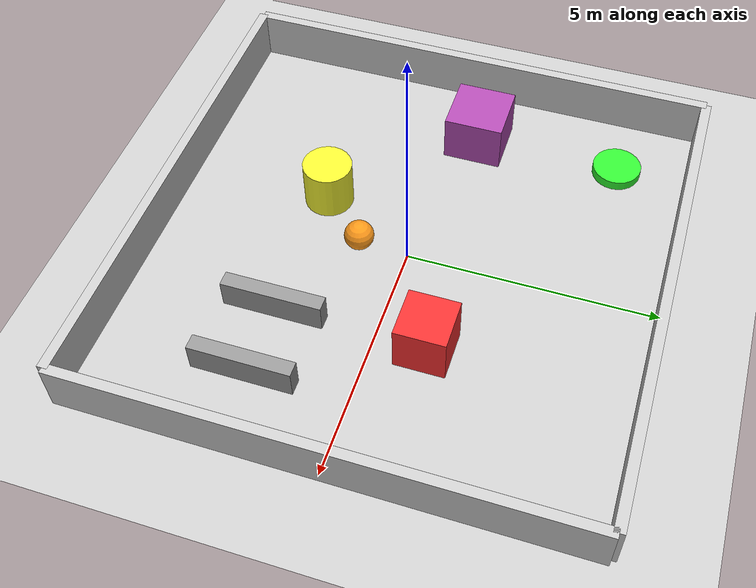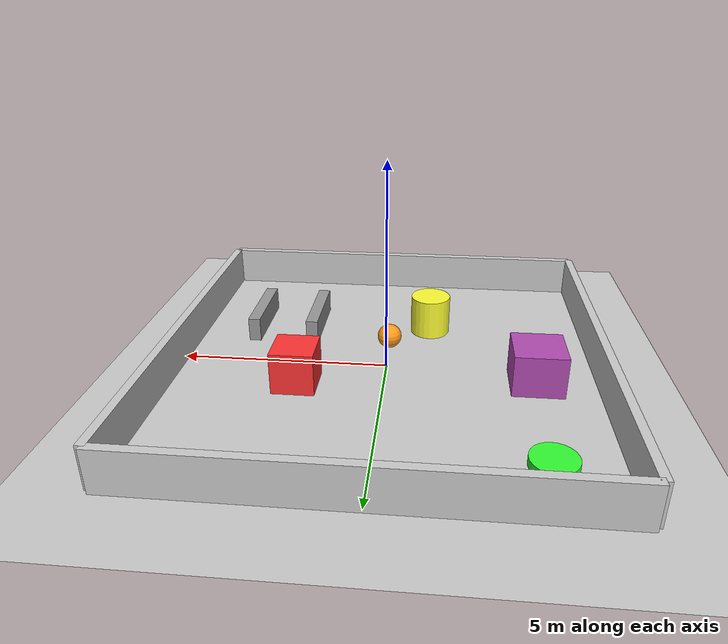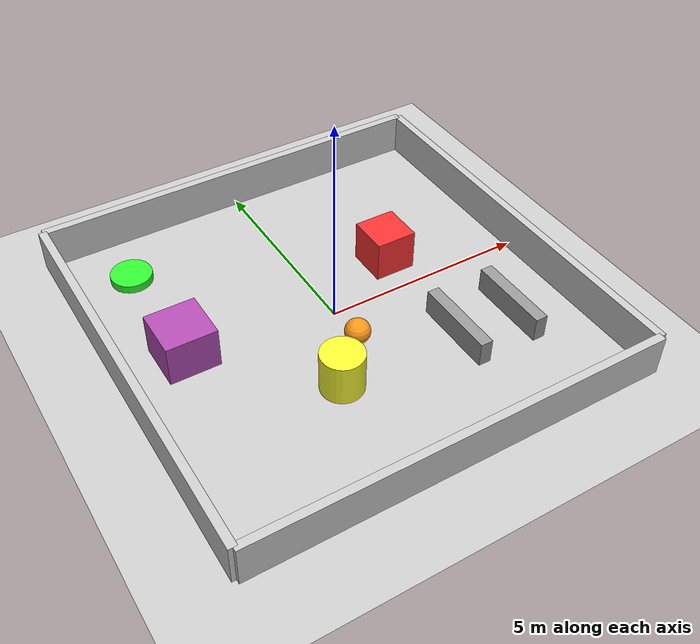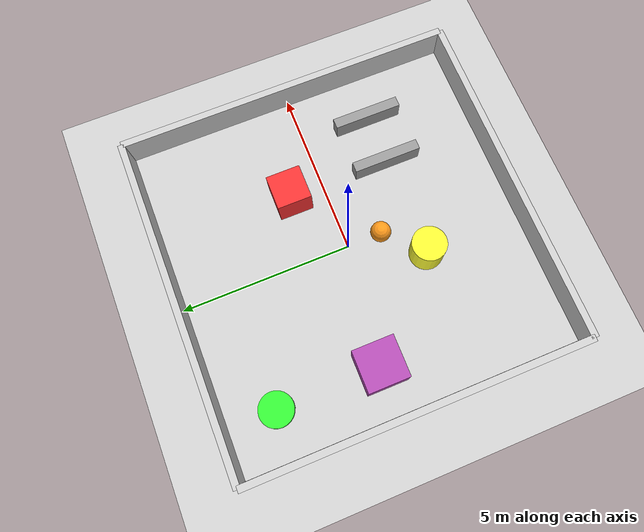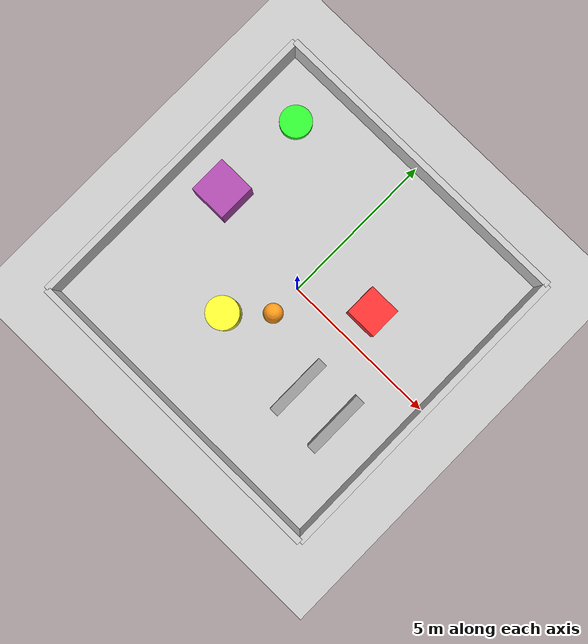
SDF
<sdf version="1.6">
 <world name="robot_navigation_world">
  <physics type="ode">
   <max_step_size>0.001</max_step_size>
   <real_time_factor>1</real_time_factor>
   <real_time_update_rate>1000</real_time_update_rate>
  </physics>
  <include><uri>model://sun</uri></include>
  <include><uri>model://ground_plane</uri></include>
  <model name="wall_north">
   <pose>0 5 0.5 0 0 0</pose>
   <static>true</static>
   <link name="link">
    <collision name="collision"><geometry><box><size>10 0.2 1</size></box></geometry></collision>
    <visual name="visual">
     <geometry><box><size>10 0.2 1</size></box></geometry>
     <material><ambient>0.5 0.5 0.5 1</ambient><diffuse>0.8 0.8 0.8 1</diffuse></material>
    </visual>
   </link>
  </model>
  <model name="wall_south">
   <pose>0 -5 0.5 0 0 0</pose>
   <static>true</static>
   <link name="link">
    <collision name="collision"><geometry><box><size>10 0.2 1</size></box></geometry></collision>
    <visual name="visual">
     <geometry><box><size>10 0.2 1</size></box></geometry>
     <material><ambient>0.5 0.5 0.5 1</ambient><diffuse>0.8 0.8 0.8 1</diffuse></material>
    </visual>
   </link>
  </model>
  <model name="wall_east">
   <pose>5 0 0.5 0 0 1.5707</pose>
   <static>true</static>
   <link name="link">
    <collision name="collision"><geometry><box><size>10 0.2 1</size></box></geometry></collision>
    <visual name="visual">
     <geometry><box><size>10 0.2 1</size></box></geometry>
     <material><ambient>0.5 0.5 0.5 1</ambient><diffuse>0.8 0.8 0.8 1</diffuse></material>
    </visual>
   </link>
  </model>
  <model name="wall_west">
   <pose>-5 0 0.5 0 0 1.5707</pose>
   <static>true</static>
   <link name="link">
    <collision name="collision"><geometry><box><size>10 0.2 1</size></box></geometry></collision>
    <visual name="visual">
     <geometry><box><size>10 0.2 1</size></box></geometry>
     <material><ambient>0.5 0.5 0.5 1</ambient><diffuse>0.8 0.8 0.8 1</diffuse></material>
    </visual>
   </link>
  </model>
  <model name="obstacle_1">
   <pose>2 1 0.5 0 0 0</pose>
   <static>true</static>
   <link name="link">
    <collision name="collision"><geometry><box><size>1 1 1</size></box></geometry></collision>
    <visual name="visual">
     <geometry><box><size>1 1 1</size></box></geometry>
     <material><ambient>0.8 0.1 0.1 1</ambient><diffuse>1 0.2 0.2 1</diffuse></material>
    </visual>
   </link>
  </model>
  <model name="obstacle_3">
   <pose>-1 -2 0.5 0 0 0</pose>
   <static>true</static>
   <link name="link">
    <collision name="collision">
     <geometry><cylinder><radius>0.5</radius><length>1</length></cylinder></geometry>
    </collision>
    <visual name="visual">
     <geometry><cylinder><radius>0.5</radius><length>1</length></cylinder></geometry>
     <material><ambient>0.8 0.8 0.1 1</ambient><diffuse>1 1 0.2 1</diffuse></material>
    </visual>
   </link>
  </model>
  <model name="passage_left">
   <pose>2 -2 0.3 0 0 0</pose>
   <static>true</static>
   <link name="link">
    <collision name="collision"><geometry><box><size>0.3 2 0.6</size></box></geometry></collision>
    <visual name="visual">
     <geometry><box><size>0.3 2 0.6</size></box></geometry>
     <material><ambient>0.4 0.4 0.4 1</ambient><diffuse>0.6 0.6 0.6 1</diffuse></material>
    </visual>
   </link>
  </model>
  <model name="passage_right">
   <pose>3.5 -2 0.3 0 0 0</pose>
   <static>true</static>
   <link name="link">
    <collision name="collision"><geometry><box><size>0.3 2 0.6</size></box></geometry></collision>
    <visual name="visual">
     <geometry><box><size>0.3 2 0.6</size></box></geometry>
     <material><ambient>0.4 0.4 0.4 1</ambient><diffuse>0.6 0.6 0.6 1</diffuse></material>
    </visual>
   </link>
  </model>
  <model name="target_zone">
   <pose>-3.5 3.5 0.1 0 0 0</pose>
   <static>true</static>
   <link name="link">
    <collision name="collision">
     <geometry><cylinder><radius>0.5</radius><length>0.2</length></cylinder></geometry>
    </collision>
    <visual name="visual">
     <geometry><cylinder><radius>0.5</radius><length>0.2</length></cylinder></geometry>
     <material>
      <ambient>0.1 1 0.1 1</ambient>
      <diffuse>0.2 1 0.2 1</diffuse>
      <emissive>0.1 0.5 0.1 1</emissive>
     </material>
    </visual>
   </link>
  </model>
  <model name="small_obstacle_2">
   <pose>-3.5 0.5 0.5 0 0 0</pose>
   <static>true</static>
   <link name="link">
    <collision name="collision"><geometry><box><size>1.2 1.2 1</size></box></geometry></collision>
    <visual name="visual">
     <geometry><box><size>1.2 1.2 1</size></box></geometry>
     <material><ambient>0.5 0.2 0.5 1</ambient><diffuse>0.7 0.3 0.7 1</diffuse></material>
    </visual>
   </link>
  </model>
  <model name="checkpoint">
   <pose>0 -1 0.3 0 0 0</pose>
   <static>true</static>
   <link name="link">
    <collision name="collision"><geometry><sphere><radius>0.3</radius></sphere></geometry></collision>
    <visual name="visual">
     <geometry><sphere><radius>0.3</radius></sphere></geometry>
     <material><ambient>1 0.5 0 1</ambient><diffuse>1 0.6 0.1 1</diffuse></material>
    </visual>
   </link>
  </model>
 </world>
</sdf>
